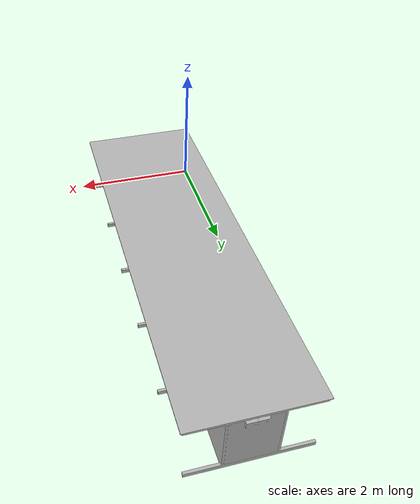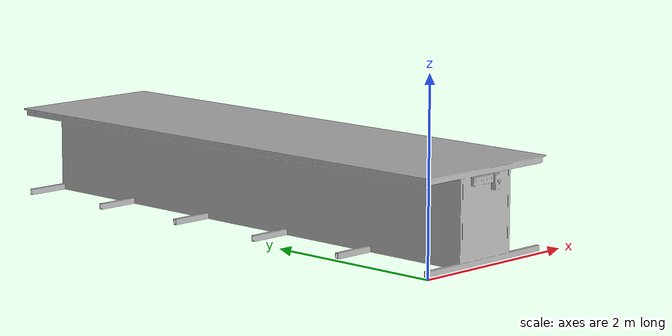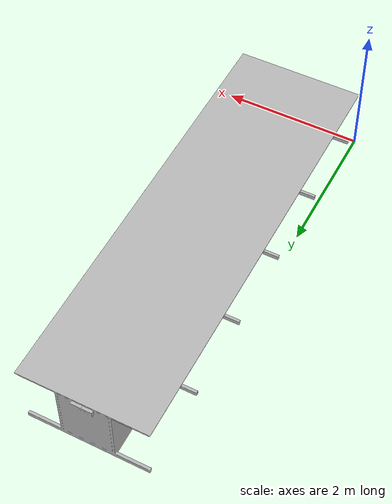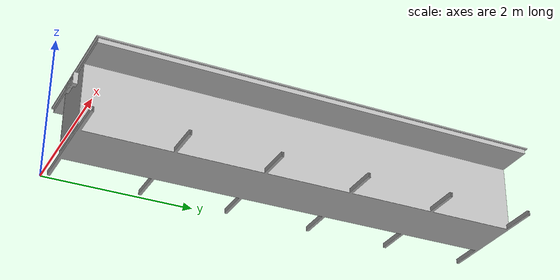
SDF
<?xml version="1.0" ?>
<sdf version="1.6">
  <model name="fyp_projectlab5">
    <pose>0 0 0 0 0 0</pose>
    <static>true</static>
    <link name="body">
      <visual name="visual">
        <geometry>
          <mesh><uri>model://fyp_projectlab5/meshes/fyp_projectlab5.dae</uri></mesh>
        </geometry>
      </visual>
      <collision name="collision">
        <geometry>
          <mesh><uri>model://fyp_projectlab5/meshes/fyp_projectlab5.dae</uri></mesh>
        </geometry>
      </collision>
    </link>
  </model>
</sdf>
